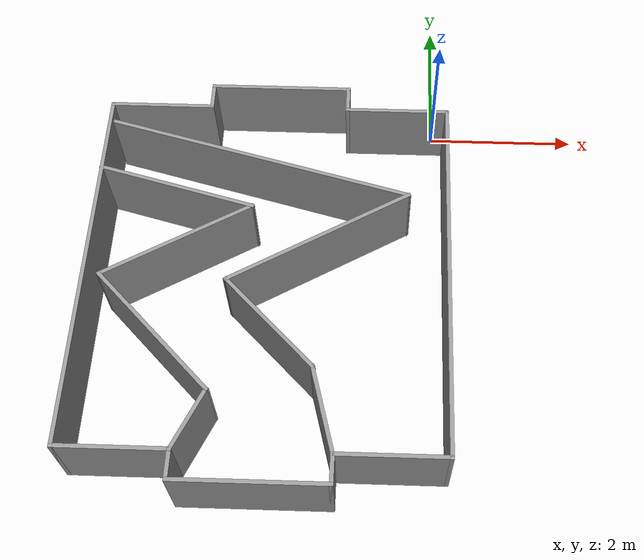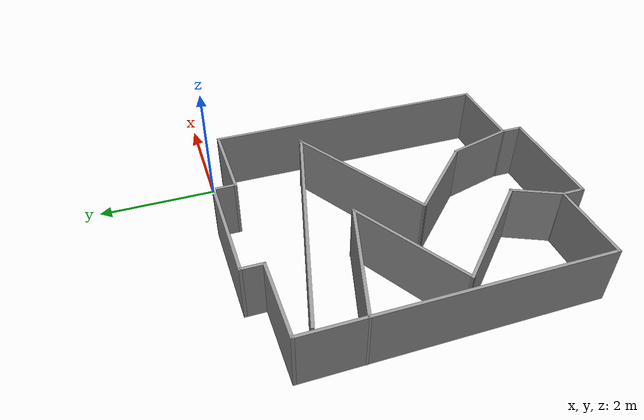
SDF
<?xml version='1.0'?>
<sdf version='1.6'>
  <model name='rgarena2-1'>
    <pose frame=''>-2.12039 -2.655 0 0 -0 0</pose>
    <link name='Wall_0'>
      <collision name='Wall_0_Collision'>
        <geometry>
          <box>
            <size>4.9 0.05 1</size>
          </box>
        </geometry>
        <pose frame=''>0 0 0.5 0 -0 0</pose>
      </collision>
      <visual name='Wall_0_Visual'>
        <pose frame=''>0 0 0.5 0 -0 0</pose>
        <geometry>
          <box>
            <size>4.9 0.05 1</size>
          </box>
        </geometry>
        <material>
          <script>
            <uri>file://media/materials/scripts/gazebo.material</uri>
            <name>Gazebo/Grey</name>
          </script>
          <ambient>1 1 1 1</ambient>
        </material>
        <meta>
          <layer>0</layer>
        </meta>
      </visual>
      <pose frame=''>-2.27061 -0 0 0 -0 -1.5708</pose>
    </link>
    <link name='Wall_1'>
      <collision name='Wall_1_Collision'>
        <geometry>
          <box>
            <size>1.4 0.05 1</size>
          </box>
        </geometry>
        <pose frame=''>0 0 0.5 0 -0 0</pose>
      </collision>
      <visual name='Wall_1_Visual'>
        <pose frame=''>0 0 0.5 0 -0 0</pose>
        <geometry>
          <box>
            <size>1.4 0.05 1</size>
          </box>
        </geometry>
        <material>
          <script>
            <uri>file://media/materials/scripts/gazebo.material</uri>
            <name>Gazebo/Grey</name>
          </script>
          <ambient>1 1 1 1</ambient>
        </material>
        <meta>
          <layer>0</layer>
        </meta>
      </visual>
      <pose frame=''>-1.59561 -2.425 0 0 -0 0</pose>
    </link>
    <link name='Wall_13'>
      <collision name='Wall_13_Collision'>
        <geometry>
          <box>
            <size>1.9 0.05 1</size>
          </box>
        </geometry>
        <pose frame=''>0 0 0.5 0 -0 0</pose>
      </collision>
      <visual name='Wall_13_Visual'>
        <pose frame=''>0 0 0.5 0 -0 0</pose>
        <geometry>
          <box>
            <size>1.9 0.05 1</size>
          </box>
        </geometry>
        <material>
          <script>
            <uri>file://media/materials/scripts/gazebo.material</uri>
            <name>Gazebo/Grey</name>
          </script>
          <ambient>1 1 1 1</ambient>
        </material>
        <meta>
          <layer>0</layer>
        </meta>
      </visual>
      <pose frame=''>0.004394 2.775 0 0 -0 3.14159</pose>
    </link>
    <link name='Wall_14'>
      <collision name='Wall_14_Collision'>
        <geometry>
          <box>
            <size>0.4 0.05 1</size>
          </box>
        </geometry>
        <pose frame=''>0 0 0.5 0 -0 0</pose>
      </collision>
      <visual name='Wall_14_Visual'>
        <pose frame=''>0 0 0.5 0 -0 0</pose>
        <geometry>
          <box>
            <size>0.4 0.05 1</size>
          </box>
        </geometry>
        <material>
          <script>
            <uri>file://media/materials/scripts/gazebo.material</uri>
            <name>Gazebo/Grey</name>
          </script>
          <ambient>1 1 1 1</ambient>
        </material>
        <meta>
          <layer>0</layer>
        </meta>
      </visual>
      <pose frame=''>-0.920606 2.6 0 0 -0 -1.5708</pose>
    </link>
    <link name='Wall_15'>
      <collision name='Wall_15_Collision'>
        <geometry>
          <box>
            <size>1.4 0.05 1</size>
          </box>
        </geometry>
        <pose frame=''>0 0 0.5 0 -0 0</pose>
      </collision>
      <visual name='Wall_15_Visual'>
        <pose frame=''>0 0 0.5 0 -0 0</pose>
        <geometry>
          <box>
            <size>1.4 0.05 1</size>
          </box>
        </geometry>
        <material>
          <script>
            <uri>file://media/materials/scripts/gazebo.material</uri>
            <name>Gazebo/Grey</name>
          </script>
          <ambient>1 1 1 1</ambient>
        </material>
        <meta>
          <layer>0</layer>
        </meta>
      </visual>
      <pose frame=''>-1.59561 2.425 0 0 -0 3.14159</pose>
    </link>
    <link name='Wall_2'>
      <collision name='Wall_2_Collision'>
        <geometry>
          <box>
            <size>0.4 0.05 1</size>
          </box>
        </geometry>
        <pose frame=''>0 0 0.5 0 -0 0</pose>
      </collision>
      <visual name='Wall_2_Visual'>
        <pose frame=''>0 0 0.5 0 -0 0</pose>
        <geometry>
          <box>
            <size>0.4 0.05 1</size>
          </box>
        </geometry>
        <material>
          <script>
            <uri>file://media/materials/scripts/gazebo.material</uri>
            <name>Gazebo/Grey</name>
          </script>
          <ambient>1 1 1 1</ambient>
        </material>
        <meta>
          <layer>0</layer>
        </meta>
      </visual>
      <pose frame=''>-0.920606 -2.6 0 0 -0 -1.5708</pose>
    </link>
    <link name='Wall_22'>
      <collision name='Wall_22_Collision'>
        <geometry>
          <box>
            <size>0.859648 0.05 1</size>
          </box>
        </geometry>
        <pose frame=''>0 0 0.5 0 -0 0</pose>
      </collision>
      <visual name='Wall_22_Visual'>
        <pose frame=''>0 0 0.5 0 -0 0</pose>
        <geometry>
          <box>
            <size>0.859648 0.05 1</size>
          </box>
        </geometry>
        <material>
          <script>
            <uri>file://media/materials/scripts/gazebo.material</uri>
            <name>Gazebo/Grey</name>
          </script>
          <ambient>1 1 1 1</ambient>
        </material>
        <meta>
          <layer>0</layer>
        </meta>
      </visual>
      <pose frame=''>-0.750106 -2.058 0 0 -0 1.13589</pose>
    </link>
    <link name='Wall_23'>
      <collision name='Wall_23_Collision'>
        <geometry>
          <box>
            <size>2.14996 0.05 1</size>
          </box>
        </geometry>
        <pose frame=''>0 0 0.5 0 -0 0</pose>
      </collision>
      <visual name='Wall_23_Visual'>
        <pose frame=''>0 0 0.5 0 -0 0</pose>
        <geometry>
          <box>
            <size>2.14996 0.05 1</size>
          </box>
        </geometry>
        <material>
          <script>
            <uri>file://media/materials/scripts/gazebo.material</uri>
            <name>Gazebo/Grey</name>
          </script>
          <ambient>1 1 1 1</ambient>
        </material>
        <meta>
          <layer>0</layer>
        </meta>
      </visual>
      <pose frame=''>-1.32211 -0.9485 0 0 -0 2.35619</pose>
    </link>
    <link name='Wall_24'>
      <collision name='Wall_24_Collision'>
        <geometry>
          <box>
            <size>2.15037 0.05 1</size>
          </box>
        </geometry>
        <pose frame=''>0 0 0.5 0 -0 0</pose>
      </collision>
      <visual name='Wall_24_Visual'>
        <pose frame=''>0 0 0.5 0 -0 0</pose>
        <geometry>
          <box>
            <size>2.15037 0.05 1</size>
          </box>
        </geometry>
        <material>
          <script>
            <uri>file://media/materials/scripts/gazebo.material</uri>
            <name>Gazebo/Grey</name>
          </script>
          <ambient>1 1 1 1</ambient>
        </material>
        <meta>
          <layer>0</layer>
        </meta>
      </visual>
      <pose frame=''>-1.15511 0.319 0 0 -0 0.523516</pose>
    </link>
    <link name='Wall_25'>
      <collision name='Wall_25_Collision'>
        <geometry>
          <box>
            <size>2.15003 0.05 1</size>
          </box>
        </geometry>
        <pose frame=''>0 0 0.5 0 -0 0</pose>
      </collision>
      <visual name='Wall_25_Visual'>
        <pose frame=''>0 0 0.5 0 -0 0</pose>
        <geometry>
          <box>
            <size>2.15003 0.05 1</size>
          </box>
        </geometry>
        <material>
          <script>
            <uri>file://media/materials/scripts/gazebo.material</uri>
            <name>Gazebo/Grey</name>
          </script>
          <ambient>1 1 1 1</ambient>
        </material>
        <meta>
          <layer>0</layer>
        </meta>
      </visual>
      <pose frame=''>-1.25961 1.116 0 0 -0 2.87952</pose>
    </link>
    <link name='Wall_27'>
      <collision name='Wall_27_Collision'>
        <geometry>
          <box>
            <size>1.15054 0.05 1</size>
          </box>
        </geometry>
        <pose frame=''>0 0 0.5 0 -0 0</pose>
      </collision>
      <visual name='Wall_27_Visual'>
        <pose frame=''>0 0 0.5 0 -0 0</pose>
        <geometry>
          <box>
            <size>1.15054 0.05 1</size>
          </box>
        </geometry>
        <material>
          <script>
            <uri>file://media/materials/scripts/gazebo.material</uri>
            <name>Gazebo/Grey</name>
          </script>
          <ambient>1 1 1 1</ambient>
        </material>
        <meta>
          <layer>0</layer>
        </meta>
      </visual>
      <pose frame=''>0.786894 -1.8935 0 0 -0 1.83275</pose>
    </link>
    <link name='Wall_28'>
      <collision name='Wall_28_Collision'>
        <geometry>
          <box>
            <size>1.64948 0.05 1</size>
          </box>
        </geometry>
        <pose frame=''>0 0 0.5 0 -0 0</pose>
      </collision>
      <visual name='Wall_28_Visual'>
        <pose frame=''>0 0 0.5 0 -0 0</pose>
        <geometry>
          <box>
            <size>1.64948 0.05 1</size>
          </box>
        </geometry>
        <material>
          <script>
            <uri>file://media/materials/scripts/gazebo.material</uri>
            <name>Gazebo/Grey</name>
          </script>
          <ambient>1 1 1 1</ambient>
        </material>
        <meta>
          <layer>0</layer>
        </meta>
      </visual>
      <pose frame=''>0.078894 -0.7965 0 0 -0 2.35619</pose>
    </link>
    <link name='Wall_29'>
      <collision name='Wall_29_Collision'>
        <geometry>
          <box>
            <size>2.65029 0.05 1</size>
          </box>
        </geometry>
        <pose frame=''>0 0 0.5 0 -0 0</pose>
      </collision>
      <visual name='Wall_29_Visual'>
        <pose frame=''>0 0 0.5 0 -0 0</pose>
        <geometry>
          <box>
            <size>2.65029 0.05 1</size>
          </box>
        </geometry>
        <material>
          <script>
            <uri>file://media/materials/scripts/gazebo.material</uri>
            <name>Gazebo/Grey</name>
          </script>
          <ambient>1 1 1 1</ambient>
        </material>
        <meta>
          <layer>0</layer>
        </meta>
      </visual>
      <pose frame=''>0.639394 0.419 0 0 -0 0.523535</pose>
    </link>
    <link name='Wall_3'>
      <collision name='Wall_3_Collision'>
        <geometry>
          <box>
            <size>1.9 0.05 1</size>
          </box>
        </geometry>
        <pose frame=''>0 0 0.5 0 -0 0</pose>
      </collision>
      <visual name='Wall_3_Visual'>
        <pose frame=''>0 0 0.5 0 -0 0</pose>
        <geometry>
          <box>
            <size>1.9 0.05 1</size>
          </box>
        </geometry>
        <material>
          <script>
            <uri>file://media/materials/scripts/gazebo.material</uri>
            <name>Gazebo/Grey</name>
          </script>
          <ambient>1 1 1 1</ambient>
        </material>
        <meta>
          <layer>0</layer>
        </meta>
      </visual>
      <pose frame=''>0.004394 -2.775 0 0 -0 0</pose>
    </link>
    <link name='Wall_30'>
      <collision name='Wall_30_Collision'>
        <geometry>
          <box>
            <size>4.15036 0.05 1</size>
          </box>
        </geometry>
        <pose frame=''>0 0 0.5 0 -0 0</pose>
      </collision>
      <visual name='Wall_30_Visual'>
        <pose frame=''>0 0 0.5 0 -0 0</pose>
        <geometry>
          <box>
            <size>4.15036 0.05 1</size>
          </box>
        </geometry>
        <material>
          <script>
            <uri>file://media/materials/scripts/gazebo.material</uri>
            <name>Gazebo/Grey</name>
          </script>
          <ambient>1 1 1 1</ambient>
        </material>
        <meta>
          <layer>0</layer>
        </meta>
      </visual>
      <pose frame=''>-0.215106 1.5995 0 0 -0 2.87988</pose>
    </link>
    <link name='Wall_4'>
      <collision name='Wall_4_Collision'>
        <geometry>
          <box>
            <size>0.4 0.05 1</size>
          </box>
        </geometry>
        <pose frame=''>0 0 0.5 0 -0 0</pose>
      </collision>
      <visual name='Wall_4_Visual'>
        <pose frame=''>0 0 0.5 0 -0 0</pose>
        <geometry>
          <box>
            <size>0.4 0.05 1</size>
          </box>
        </geometry>
        <material>
          <script>
            <uri>file://media/materials/scripts/gazebo.material</uri>
            <name>Gazebo/Grey</name>
          </script>
          <ambient>1 1 1 1</ambient>
        </material>
        <meta>
          <layer>0</layer>
        </meta>
      </visual>
      <pose frame=''>0.929394 -2.6 0 0 -0 1.5708</pose>
    </link>
    <link name='Wall_5'>
      <collision name='Wall_5_Collision'>
        <geometry>
          <box>
            <size>1.4 0.05 1</size>
          </box>
        </geometry>
        <pose frame=''>0 0 0.5 0 -0 0</pose>
      </collision>
      <visual name='Wall_5_Visual'>
        <pose frame=''>0 0 0.5 0 -0 0</pose>
        <geometry>
          <box>
            <size>1.4 0.05 1</size>
          </box>
        </geometry>
        <material>
          <script>
            <uri>file://media/materials/scripts/gazebo.material</uri>
            <name>Gazebo/Grey</name>
          </script>
          <ambient>1 1 1 1</ambient>
        </material>
        <meta>
          <layer>0</layer>
        </meta>
      </visual>
      <pose frame=''>1.60439 -2.425 0 0 -0 0</pose>
    </link>
    <link name='Wall_6'>
      <collision name='Wall_6_Collision'>
        <geometry>
          <box>
            <size>4.9 0.05 1</size>
          </box>
        </geometry>
        <pose frame=''>0 0 0.5 0 -0 0</pose>
      </collision>
      <visual name='Wall_6_Visual'>
        <pose frame=''>0 0 0.5 0 -0 0</pose>
        <geometry>
          <box>
            <size>4.9 0.05 1</size>
          </box>
        </geometry>
        <material>
          <script>
            <uri>file://media/materials/scripts/gazebo.material</uri>
            <name>Gazebo/Grey</name>
          </script>
          <ambient>1 1 1 1</ambient>
        </material>
        <meta>
          <layer>0</layer>
        </meta>
      </visual>
      <pose frame=''>2.27939 -0 0 0 -0 1.5708</pose>
    </link>
    <link name='Wall_7'>
      <collision name='Wall_7_Collision'>
        <geometry>
          <box>
            <size>1.4 0.05 1</size>
          </box>
        </geometry>
        <pose frame=''>0 0 0.5 0 -0 0</pose>
      </collision>
      <visual name='Wall_7_Visual'>
        <pose frame=''>0 0 0.5 0 -0 0</pose>
        <geometry>
          <box>
            <size>1.4 0.05 1</size>
          </box>
        </geometry>
        <material>
          <script>
            <uri>file://media/materials/scripts/gazebo.material</uri>
            <name>Gazebo/Grey</name>
          </script>
          <ambient>1 1 1 1</ambient>
        </material>
        <meta>
          <layer>0</layer>
        </meta>
      </visual>
      <pose frame=''>1.60439 2.425 0 0 -0 3.14159</pose>
    </link>
    <link name='Wall_9'>
      <collision name='Wall_9_Collision'>
        <geometry>
          <box>
            <size>0.4 0.05 1</size>
          </box>
        </geometry>
        <pose frame=''>0 0 0.5 0 -0 0</pose>
      </collision>
      <visual name='Wall_9_Visual'>
        <pose frame=''>0 0 0.5 0 -0 0</pose>
        <geometry>
          <box>
            <size>0.4 0.05 1</size>
          </box>
        </geometry>
        <material>
          <script>
            <uri>file://media/materials/scripts/gazebo.material</uri>
            <name>Gazebo/Grey</name>
          </script>
          <ambient>1 1 1 1</ambient>
        </material>
        <meta>
          <layer>0</layer>
        </meta>
      </visual>
      <pose frame=''>0.929394 2.6 0 0 -0 1.5708</pose>
    </link>
    <static>1</static>
  </model>
</sdf>
